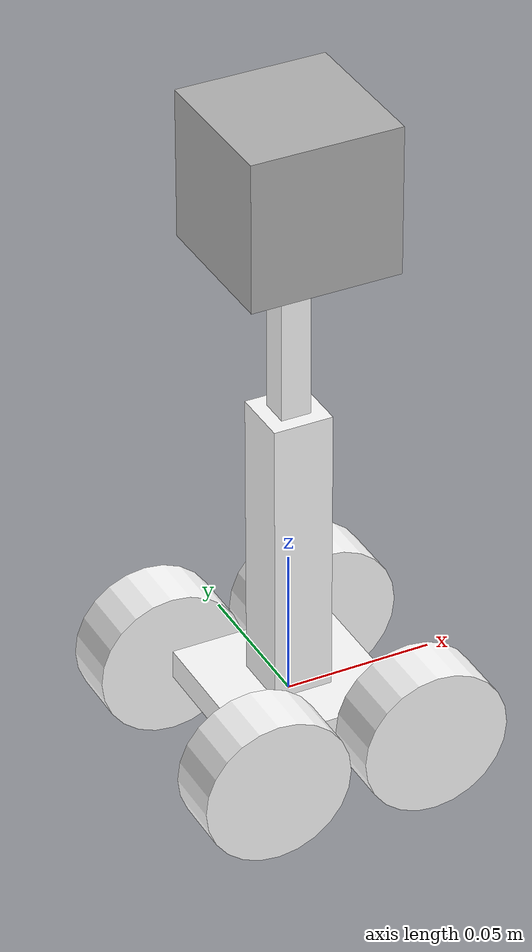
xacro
<?xml version="1.0"?>
<robot name="test_bot_2" xmlns:xacro="http://ros.org/wiki/xacro">

  <xacro:property name="base_width" value="0.055" />
  <xacro:property name="base_height" value="0.01" />
  <xacro:property name="wheel_dia" value="0.025" />
  <xacro:property name="wheel_thick" value="0.02"/>
  <xacro:property name="slider_base_height" value="0.1"/>
  <xacro:property name="slider_base_width" value="0.02"/>
  <xacro:property name="slider_height" value="0.15"/>
  <xacro:property name="slider_width" value="0.01"/>
  <xacro:property name="camera_width" value="0.05"/>
  <xacro:property name="slide_ulim" value="1.5"/>
  <xacro:property name="slide_llim" value="-1.5"/>
  <xacro:property name="cam_llim" value="-0.6"/>
  <xacro:property name="cam_ulim" value="0.6"/>

  <material name="white">
      <color rgba="1 1 1 1"/>
  </material>

  <xacro:macro name="default_inertial" params="mass inertia">
    <inertial>
      <mass value="${mass}" />
      <inertia ixx="${inertia}" ixy="0.0" ixz="0.0" iyy="${inertia}" iyz="0.0" izz="${inertia}" />
    </inertial>
  </xacro:macro>

  <xacro:macro name="wheel" params="prefix reflect1 reflect2 reflect3">
      <link name="${prefix}_wheel">
          <visual>
              <geometry>
                  <cylinder length="${wheel_thick}" radius="${wheel_dia}"/>
              </geometry>
              <origin xyz="${reflect3*wheel_thick/2} 0 0" rpy="0 1.57075 0"/>
              <material name="white"/>
          </visual>
          <collision>
              <geometry>
                  <cylinder length="${wheel_thick}" radius="${wheel_dia}"/>
              </geometry>
              <origin xyz="${reflect3*wheel_thick/2} 0 0" rpy="0 1.57075 0"/>
          </collision>
          <inertial>
            <mass value="1" />
            <inertia ixx="0.0001" ixy="0.0" ixz="0.0" iyy=".0001" iyz="0.0" izz=".00001" />
          </inertial>
      </link>

      <joint name="base_to_${prefix}_wheel" type="continuous">
          <parent link="base_frame"/>
          <child link="${prefix}_wheel"/>
          <origin xyz="${reflect1*base_width/2} ${reflect2*base_width/2} 0" rpy="0.0 0.0 1.57079632679"/>
      </joint>
  </xacro:macro>

  <link name="base_frame">
      <visual>
          <geometry>
              <box size="${base_width} ${base_width} ${base_height}"/>
          </geometry>
          <material name="white"/>
      </visual>
      <collision>
          <geometry>
              <box size="${base_width} ${base_width} ${base_height}"/>
          </geometry>
      </collision>
      <inertial>
        <mass value="100" />
        <inertia ixx="100000.0" ixy="0.0" ixz="0.0" iyy="100000.0" iyz="0.0" izz="10000.0" />
      </inertial>
  </link>

  <xacro:wheel prefix="0" reflect1="1" reflect2="1" reflect3="1"/>
  <xacro:wheel prefix="1" reflect1="-1" reflect2="1" reflect3="1"/>
  <xacro:wheel prefix="2" reflect1="1" reflect2="-1" reflect3="-1"/>
  <xacro:wheel prefix="3" reflect1="-1" reflect2="-1" reflect3="-1"/>

  <link name = "slider_base">
      <visual>
          <geometry>
              <box size="${slider_base_width} ${slider_base_width} ${slider_base_height}"/>
          </geometry>
          <origin xyz="0.0 0.0 ${slider_base_height/2}"/>
          <material name="white"/>
      </visual>
      <collision>
          <geometry>
              <box size="${slider_base_width} ${slider_base_width} ${slider_base_height}"/>
          </geometry>
          <origin xyz="0.0 0.0 ${slider_base_height/2}"/>
      </collision>
      <inertial>
        <mass value="10" />
        <inertia ixx="0.001" ixy="0.0" ixz="0.0" iyy="0.001" iyz="0.0" izz="0.001" />
      </inertial>
  </link>

  <joint name="base_slider_base" type="fixed">
      <parent link="base_frame"/>
      <child link="slider_base"/>
      <origin xyz="0.0 0.0 ${base_height/2}"/>
  </joint>

  <link name = "slider">
      <visual>
          <geometry>
              <box size="${slider_height} ${slider_width} ${slider_width}"/>
          </geometry>
          <origin xyz="0.0 0.0 0.0"/>
          <material name="white"/>
      </visual>
      <inertial>
        <mass value=".001" />
        <inertia ixx="0.0001" ixy="0.0" ixz="0.0" iyy="0.0001" iyz="0.0" izz="0.0001" />
      </inertial>
  </link>

  <joint name="slider_base" type="prismatic">
      <parent link="base_frame"/>
      <child link="slider"/>
      <axis xyz="1 0 0"/>
      <origin xyz="0.0 0.0 ${slider_base_height+base_height}" rpy="0.0 -1.57079632679 0.0"/>
      <limit effort="500" lower="${slide_llim}" upper="${slide_ulim}" velocity="150"/>
    </joint>

  <link name = "camera_mount">
      <visual>
          <geometry>
              <box size="${camera_width} ${camera_width} ${camera_width}"/>
          </geometry>
      </visual>
      <collision>
          <geometry>
              <box size="${camera_width} ${camera_width} ${camera_width}"/>
          </geometry>
      </collision>
    <inertial>
        <mass value="0.00001" />
        <inertia ixx="0.0000000001" ixy="0.0" ixz="0.000000000001000" iyy="0.0000" iyz="0.0" izz="0.0000000001" />
    </inertial>
  </link>

  <joint name="camera_slider" type="revolute">
      <parent link="slider"/>
      <child link="camera_mount"/>
      <origin xyz="${slider_height/2} 0.0 0.0" rpy="0.0 ${pi/2} 0.0"/> <!-- pi/2 -->
      <limit effort="200" lower="${cam_llim}" upper="${cam_ulim}" velocity="200"/>
      <axis xyz="0 -1 0"/>
  </joint>

  <transmission name="slider_trans">
    <type>transmission_interface/SimpleTransmission</type>
    <actuator name="$slider_motor">
      <mechanicalReduction>1</mechanicalReduction>
    </actuator>
    <joint name="slider_base">
      <hardwareInterface>hardware_interface/VelocityJointInterface</hardwareInterface>
    </joint>
  </transmission>

  <transmission name="head_rotation">
    <type>transmission_interface/SimpleTransmission</type>
    <actuator name="$camera_motor">
      <mechanicalReduction>1</mechanicalReduction>
    </actuator>
    <joint name="camera_slider">
      <hardwareInterface>hardware_interface/VelocityJointInterface</hardwareInterface>
    </joint>
  </transmission>

  <xacro:macro name="wheel_trans" params="prefix">
    <transmission name="${prefix}_wheel_trans">
      <type>transmission_interface/SimpleTransmission</type>
      <actuator name="${prefix}_wheel_motor">
        <mechanicalReduction>1</mechanicalReduction>
      </actuator>
      <joint name="base_to_${prefix}_wheel">
        <hardwareInterface>hardware_interface/VelocityJointInterface</hardwareInterface>
      </joint>
    </transmission>
    <gazebo reference="${prefix}_wheel">
      <mu1 value="300.0"/>
      <mu2 value="100.0"/>
      <kp value="1000000.0" />
      <kd value="1000.0" />
      <material>Gazebo/Grey</material>
    </gazebo>
  </xacro:macro>

  <xacro:wheel_trans prefix="0"/>
  <xacro:wheel_trans prefix="1"/>
  <xacro:wheel_trans prefix="2"/>
  <xacro:wheel_trans prefix="3"/>

  <gazebo reference="camera_slider">
    <stopKd value="1000000.0" />
    <stopKp value="1000000.0" />
  </gazebo>
  <gazebo>
      <plugin name="gazebo_ros_control" filename="libgazebo_ros_control.so">
          <robotNamespace>/</robotNamespace>
      </plugin>
  </gazebo>

  <link name = "camera_link_l">
  </link>

  <!-- Gazebo Plug in for Stereo Camera -->
  <joint name="camera_l" type="fixed">
    <parent link="camera_mount"/>
    <child link="camera_link_l"/>
    <origin xyz="${camera_width/2} ${camera_width/4} 0.0 " rpy="0.0 0.0 0.0"/>
  </joint>

  <link name="left_camera_optical_frame"/>
  <link name="right_camera_optical_frame"/>

  <joint name="left_camera_optical_joint" type="fixed">
    <origin xyz="0 0 0" rpy="${-pi/2} 0 ${-pi/2}"/>
    <parent link="camera_link_l"/>
    <child link="left_camera_optical_frame"/>
    <preserveFixedJoint>true</preserveFixedJoint>
  </joint>

  <joint name="right_camera_optical_joint" type="fixed">
    <origin xyz="${camera_width/2} 0 0" rpy="0 0 0"/>
    <parent link="left_camera_optical_frame"/>
    <child link="right_camera_optical_frame"/>
    <preserveFixedJoint>true</preserveFixedJoint>
  </joint>

    <gazebo reference="camera_link_l">
        <sensor type="multicamera" name="stereo_camera">
          <update_rate>20.0</update_rate>
          <camera name="left">
            <horizontal_fov>1.3962634</horizontal_fov>
            <image>
              <width>800</width>
              <height>800</height>
              <format>R8G8B8</format>
            </image>
            <clip>
              <near>0.02</near>
              <far>300</far>
            </clip>
            <noise>
              <type>gaussian</type>
              <mean>0.0</mean>
              <stddev>0.0</stddev>
            </noise>
          </camera>
          <camera name="right">
            <pose>0 ${-camera_width/2} 0 0 0 0</pose>
            <horizontal_fov>1.3962634</horizontal_fov>
            <image>
              <width>800</width>
              <height>800</height>
              <format>R8G8B8</format>
            </image>
            <clip>
              <near>0.02</near>
              <far>300</far>
            </clip>
            <noise>
              <type>gaussian</type>
              <mean>0.0</mean>
              <stddev>0.0</stddev>
            </noise>
          </camera>
          <plugin name="stereo_camera_controller" filename="libgazebo_ros_multicamera.so">
            <alwaysOn>true</alwaysOn>
            <updateRate>30.0</updateRate>
            <cameraName>test_bot_2/camera</cameraName>
            <imageTopicName>image_raw</imageTopicName>
            <cameraInfoTopicName>camera_info</cameraInfoTopicName>
            <frameName>left_camera_optical_frame</frameName>
            <hackBaseline>${camera_width/2}</hackBaseline>
            <distortionK1>0.0</distortionK1>
            <distortionK2>0.0</distortionK2>
            <distortionK3>0.0</distortionK3>
            <distortionT1>0.0</distortionT1>
            <distortionT2>0.0</distortionT2>
          </plugin>
        </sensor>
      </gazebo>

      <link name = "imu_link">
      </link>

      <joint name="imu_mount" type="fixed">
        <parent link="camera_mount"/>
        <child link="imu_link"/>
        <origin xyz="0.0 0.0 0.0" rpy="0.0 0.0 0.0"/>
      </joint>

      <gazebo>
        <plugin name="imu_plugin" filename="libgazebo_ros_imu.so">
          <alwaysOn>true</alwaysOn>
          <bodyName>imu_link</bodyName>
          <topicName>imu</topicName>
          <serviceName>imu_service</serviceName>
          <gaussianNoise>0.0</gaussianNoise>
          <updateRate>250.0</updateRate>
          <rateDrift>0. 0. 0.</rateDrift>
          <accelDrift>0. 0. 0.</accelDrift>
        </plugin>
      </gazebo>

      <gazebo>
        <plugin name="p3d_base_controller" filename="libgazebo_ros_p3d.so">
          <alwaysOn>true</alwaysOn>
          <updateRate>50.0</updateRate>
          <bodyName>base_frame</bodyName>
          <topicName>ground_truth/state</topicName>
          <gaussianNoise>0.01</gaussianNoise>
          <frameName>world</frameName>
          <xyzOffsets>0 0 0</xyzOffsets>
          <rpyOffsets>0 0 0</rpyOffsets>
        </plugin>
      </gazebo>

</robot>
